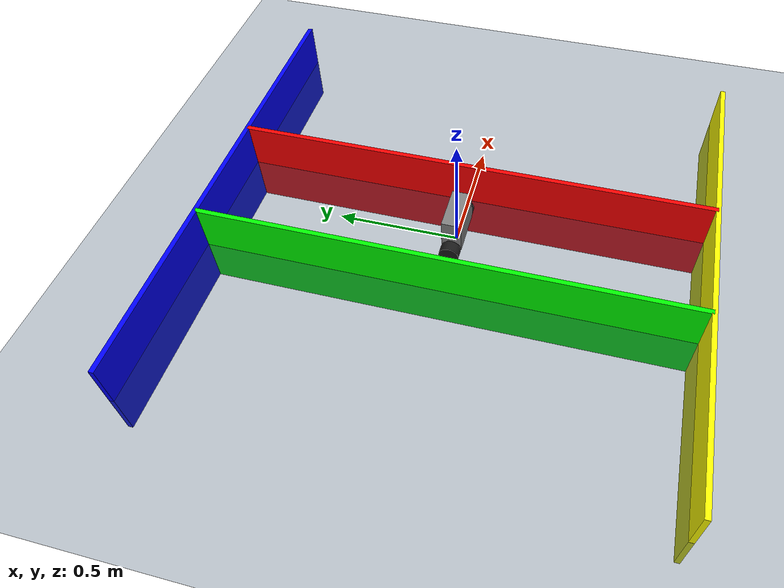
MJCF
<mujoco model="robot scene">
  <compiler angle="radian" inertiafromgeom="true"/>
  <option gravity="0 0 -9.81" timestep="0.00002" integrator="implicitfast"/>

  <include file="robot.xml"/>

  <statistic center="0 0 0.1" extent="0.8"/>

  <visual>
    <headlight diffuse="0.6 0.6 0.6" ambient="0.3 0.3 0.3" specular="0 0 0"/>
    <rgba haze="0.15 0.25 0.35 1"/>
    <global azimuth="120" elevation="-20"/>
  </visual>

  <asset>
    <texture type="skybox" builtin="gradient" rgb1="0.8 0.8 0.8" rgb2="0 0 0" width="512" height="3072"/>
    <texture type="2d" name="groundplane" builtin="checker" mark="edge" rgb1="0.2 0.3 0.4" rgb2="0.1 0.2 0.3"
      markrgb="0.8 0.8 0.8" width="300" height="300"/>
    <material name="groundplane" texture="groundplane" texuniform="true" texrepeat="5 5" reflectance="0.2"/>
    <texture type="2d" name="wheel_texture" builtin="checker" mark="edge" rgb1="0.0 0.0 0.0" rgb2="0.2 0.2 0.2"
      markrgb="0.3 0.3 0.3" width="300" height="300"/>
    <material name="wheel_material" texture="wheel_texture" texuniform="true" texrepeat="5 5"/>
  </asset>

  <worldbody>
    <light pos="0 0 1.5" dir="-0.5 -0.5 -1" directional="true"/>
    <geom name="floor" size="0 0 0.05" pos="0 0 -0.02" type="plane" material="groundplane"/>
  </worldbody>

  <worldbody>
    <geom name="static_box_01" type="box" size="0.01 1.0 0.2" pos="0.25 0 -0.025" rgba="1 0 0 1" />
  </worldbody>
  <worldbody>
    <geom name="static_box_02" type="box" size="0.01 1.0 0.2" pos="-0.25 0 -0.025" rgba="0 1 0 1" />
  </worldbody>
  <worldbody>
    <geom name="static_box_03" type="box" size="1.0 0.01 0.2" pos="0 1 -0.025" rgba="0 0 1 1" />
  </worldbody>
  <worldbody>
    <geom name="static_box_04" type="box" size="1.0 0.01 0.2" pos="0 -1 -0.025" rgba="1 1 0 1" />
  </worldbody>

  <contact>
    <pair geom1="floor" geom2="l_wheel_geom" friction="0.9 0.9 0.1" solref="0.02 0.5" solimp="0.5 0.5 0.002"/>
    <pair geom1="floor" geom2="r_wheel_geom" friction="0.9 0.9 0.1" solref="0.02 0.5" solimp="0.5 0.5 0.002"/>
  </contact>

</mujoco>

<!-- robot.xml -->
<mujoco model="balance">

  <worldbody>
    <body name="robot_body">
      <joint name="robot_body_joint" type="free"/>
      <!-- Body: 180x80x140mm (L×W×H), center Z = 0.11 (bottom at 40mm) -->
      <geom size="0.09 0.04 0.07" pos="0 0 0.11" type="box"/>
      <inertial pos="0 0 0.065" mass="0.928"/>

      <!-- Wheels: 115mm from center (230mm total span), 80mm diameter, 45mm wide, 50mm height -->
      <body name="l_wheel" pos="-0.115 0 0.05">
        <inertial pos="0 0 0" mass="0.084"/>
        <joint name="torso_l_wheel" type="hinge" pos="0 0 0" axis="-1 0 0" damping="0.01"/>
        <geom name="l_wheel_geom" size="0.04 0.0225" quat="0.707107 0 0.707107 0" type="cylinder" material="wheel_material"/>
      </body>

      <body name="r_wheel" pos="0.115 0 0.05">
        <inertial pos="0 0 0" mass="0.084"/>
        <joint name="torso_r_wheel" type="hinge" pos="0 0 0" axis="1 0 0" damping="0.01"/>
        <geom name="r_wheel_geom" size="0.04 0.0225" quat="0.707107 0 0.707107 0" type="cylinder" material="wheel_material"/>
      </body>
    </body>
  </worldbody>

  <actuator>
    <velocity name="motor_l_wheel" joint="torso_l_wheel" ctrllimited="true" ctrlrange="-78.54 78.54" kv="4.0" forcelimited="true" forcerange="-0.65 0.65"/>
    <velocity name="motor_r_wheel" joint="torso_r_wheel" ctrllimited="true" ctrlrange="-78.54 78.54" kv="4.0" forcelimited="true" forcerange="-0.65 0.65"/>
  </actuator>

</mujoco>
